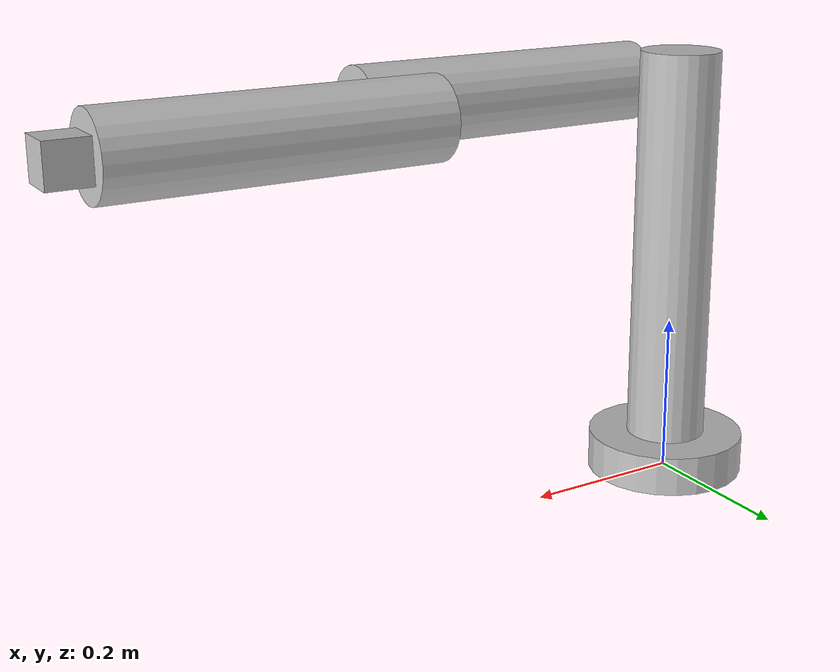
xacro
<?xml version="1.0"?>
<robot xmlns:xacro="http://www.ros.org/wiki/xacro">

  <material name="silver">
    <color rgba="0.75 0.75 0.75 1"/>
  </material>

  <link name='root'/>
  <link name='massive_block'>
    <visual>
      <geometry>
        <box size="0.1 0.1 0.0001"/>
      </geometry>
      <material name="silver"/>
    </visual>
    <collision>
      <pose>0 0 0 0 0 0</pose>
      <geometry>
        <box size="0.1 0.1 0.0001"/>
      </geometry>
    </collision>
    <inertial>
      <mass value="1000.0"/>
      <origin xyz="0 0 0"/>
      <inertia ixx="0" iyy="0" izz="0"
        ixy="0" ixz="0" iyz="0"/>
    </inertial>
  </link>
  <joint name="root_to_massive_block" type="fixed">
    <parent link="root"/>
    <child link="massive_block"/>
  </joint>
  <link name="base_link">
    <visual>
      <geometry>
        <cylinder length="0.05" radius="0.1"/>
      </geometry>
      <material name="silver"/>
      <origin xyz="0 0 0.025"/>
    </visual>
    <collision>
      <geometry>
        <cylinder length="0.05" radius="0.1"/>
      </geometry>
      <origin xyz="0 0 0.025"/>
    </collision>
    <inertial>
      <mass value="1.0"/>
      <origin xyz="0 0 0.025"/>
      <inertia ixx="0.0027" iyy="0.0027" izz="0.005"
        ixy="0" ixz="0" iyz="0"/>
    </inertial>
  </link>
  <joint name="massive_block_to_base_link" type="fixed">
    <parent link="massive_block"/>
    <child link="base_link"/>
  </joint>
  <link name="torso">
    <visual>
      <geometry>
        <cylinder length="0.5" radius="0.05"/>
      </geometry>
      <material name="silver"/>
      <origin xyz="0 0 0.25"/>
    </visual>
    <collision>
      <geometry>
        <cylinder length="0.5" radius="0.05"/>
      </geometry>
      <origin xyz="0 0 0.25"/>
    </collision>
    <inertial>
      <mass value="1.0"/>
      <origin xyz="0 0 0.25"/>
      <inertia ixx="0.002146" iyy="0.002146" izz="0.00125"
        ixy="0" ixz="0" iyz="0"/>
    </inertial>
  </link>
  <joint name="base_link_to_torso" type="continuous">
    <axis xyz="0 0 1"/>
    <parent link="base_link"/>
    <child link="torso"/>
    <origin rpy="0 0 0" xyz="0 0 0.05"/>
  </joint>
  <link name="upper_arm">
    <visual>
      <geometry>
        <cylinder length="0.4" radius="0.05"/>
      </geometry>
      <material name="silver"/>
      <origin xyz="0 0 0.2"/>
    </visual>
    <collision>
      <geometry>
        <cylinder length="0.4" radius="0.05"/>
      </geometry>
      <origin xyz="0 0 0.2"/>
    </collision>
    <inertial>
      <mass value="1.0"/>
      <origin xyz="0 0 0.2"/>
      <inertia ixx="0.01396" iyy="0.01396" izz="0.00125"
        ixy="0" ixz="0" iyz="0"/>
    </inertial>
  </link>
  <joint name="torso_to_upper_arm" type="continuous">
    <axis xyz="0 1 0"/>
    <parent link="torso"/>
    <child link="upper_arm"/>
    <origin rpy="0 1.5708 0" xyz="0 -0.1 0.45"/>
  </joint>
  <link name="lower_arm">
    <visual>
      <geometry>
        <cylinder length="0.4" radius="0.05"/>
      </geometry>
      <material name="silver"/>
      <origin xyz="0 0 0.2"/>
    </visual>
    <collision>
      <geometry>
        <cylinder length="0.4" radius="0.05"/>
      </geometry>
      <origin xyz="0 0 0.2"/>
    </collision>
    <inertial>
      <mass value="1.0"/>
      <origin xyz="0 0 0.2"/>
      <inertia ixx="0.01396" iyy="0.01396" izz="0.00125"
        ixy="0" ixz="0" iyz="0"/>
    </inertial>
  </link>
  <joint name="upper_arm_to_lower_arm" type="continuous">
    <axis xyz="0 1 0"/>
    <parent link="upper_arm"/>
    <child link="lower_arm"/>
    <origin rpy="0 0 0" xyz="0 0.1 0.35"/>
  </joint>
  <link name="hand">
    <visual>
      <geometry>
        <box size="0.05 0.05 0.05"/>
      </geometry>
      <material name="silver"/>
    </visual>
    <collision>
      <geometry>
        <box size="0.05 0.05 0.05"/>
      </geometry>
    </collision>
    <inertial>
      <mass value="1.0"/>
      <inertia ixx="0.00042" iyy="0.00042" izz="0.00042"
        ixy="0" ixz="0" iyz="0"/>
    </inertial>
  </link>
  <joint name="lower_arm_to_hand" type="continuous">
    <axis xyz="0 1 0"/>
    <parent link="lower_arm"/>
    <child link="hand"/>
    <origin rpy="0 0 0" xyz="0 0 0.425"/>
  </joint>
</robot>
